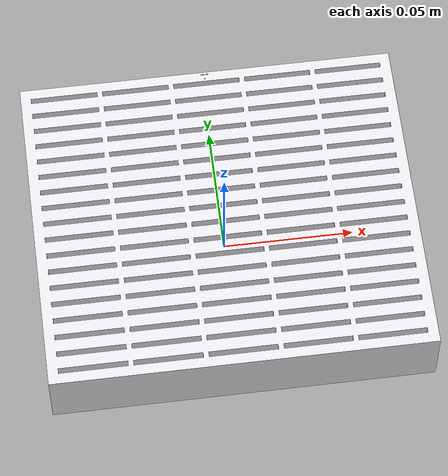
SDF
<?xml version="1.0" ?>
<sdf version="1.7">
  <model name="rack_laminillas">
    <static>true</static>
    <link name="link">

      <collision name="col_base">
        <pose>0.00000 0.00000 0.00100 0 0 0</pose>
        <geometry>
          <box><size>0.14450 0.12560 0.00200</size></box>
        </geometry>
        <surface>
          <friction><ode><mu>0.9</mu><mu2>0.9</mu2></ode></friction>
          <contact>
            <ode><kp>1e6</kp><kd>100</kd><min_depth>0.0002</min_depth></ode>
          </contact>
        </surface>
      </collision>

      <collision name="col_nervio_y_00">
        <pose>0.00000 -0.06080 0.01450 0 0 0</pose>
        <geometry>
          <box><size>0.14450 0.00400 0.02500</size></box>
        </geometry>
        <surface>
          <friction><ode><mu>0.9</mu><mu2>0.9</mu2></ode></friction>
          <contact>
            <ode><kp>1e6</kp><kd>100</kd><min_depth>0.0002</min_depth></ode>
          </contact>
        </surface>
      </collision>

      <collision name="col_nervio_y_01">
        <pose>0.00000 -0.05440 0.01450 0 0 0</pose>
        <geometry>
          <box><size>0.14450 0.00480 0.02500</size></box>
        </geometry>
        <surface>
          <friction><ode><mu>0.9</mu><mu2>0.9</mu2></ode></friction>
          <contact>
            <ode><kp>1e6</kp><kd>100</kd><min_depth>0.0002</min_depth></ode>
          </contact>
        </surface>
      </collision>

      <collision name="col_nervio_y_02">
        <pose>0.00000 -0.04760 0.01450 0 0 0</pose>
        <geometry>
          <box><size>0.14450 0.00480 0.02500</size></box>
        </geometry>
        <surface>
          <friction><ode><mu>0.9</mu><mu2>0.9</mu2></ode></friction>
          <contact>
            <ode><kp>1e6</kp><kd>100</kd><min_depth>0.0002</min_depth></ode>
          </contact>
        </surface>
      </collision>

      <collision name="col_nervio_y_03">
        <pose>0.00000 -0.04080 0.01450 0 0 0</pose>
        <geometry>
          <box><size>0.14450 0.00480 0.02500</size></box>
        </geometry>
        <surface>
          <friction><ode><mu>0.9</mu><mu2>0.9</mu2></ode></friction>
          <contact>
            <ode><kp>1e6</kp><kd>100</kd><min_depth>0.0002</min_depth></ode>
          </contact>
        </surface>
      </collision>

      <collision name="col_nervio_y_04">
        <pose>0.00000 -0.03400 0.01450 0 0 0</pose>
        <geometry>
          <box><size>0.14450 0.00480 0.02500</size></box>
        </geometry>
        <surface>
          <friction><ode><mu>0.9</mu><mu2>0.9</mu2></ode></friction>
          <contact>
            <ode><kp>1e6</kp><kd>100</kd><min_depth>0.0002</min_depth></ode>
          </contact>
        </surface>
      </collision>

      <collision name="col_nervio_y_05">
        <pose>0.00000 -0.02720 0.01450 0 0 0</pose>
        <geometry>
          <box><size>0.14450 0.00480 0.02500</size></box>
        </geometry>
        <surface>
          <friction><ode><mu>0.9</mu><mu2>0.9</mu2></ode></friction>
          <contact>
            <ode><kp>1e6</kp><kd>100</kd><min_depth>0.0002</min_depth></ode>
          </contact>
        </surface>
      </collision>

      <collision name="col_nervio_y_06">
        <pose>0.00000 -0.02040 0.01450 0 0 0</pose>
        <geometry>
          <box><size>0.14450 0.00480 0.02500</size></box>
        </geometry>
        <surface>
          <friction><ode><mu>0.9</mu><mu2>0.9</mu2></ode></friction>
          <contact>
            <ode><kp>1e6</kp><kd>100</kd><min_depth>0.0002</min_depth></ode>
          </contact>
        </surface>
      </collision>

      <collision name="col_nervio_y_07">
        <pose>0.00000 -0.01360 0.01450 0 0 0</pose>
        <geometry>
          <box><size>0.14450 0.00480 0.02500</size></box>
        </geometry>
        <surface>
          <friction><ode><mu>0.9</mu><mu2>0.9</mu2></ode></friction>
          <contact>
            <ode><kp>1e6</kp><kd>100</kd><min_depth>0.0002</min_depth></ode>
          </contact>
        </surface>
      </collision>

      <collision name="col_nervio_y_08">
        <pose>0.00000 -0.00680 0.01450 0 0 0</pose>
        <geometry>
          <box><size>0.14450 0.00480 0.02500</size></box>
        </geometry>
        <surface>
          <friction><ode><mu>0.9</mu><mu2>0.9</mu2></ode></friction>
          <contact>
            <ode><kp>1e6</kp><kd>100</kd><min_depth>0.0002</min_depth></ode>
          </contact>
        </surface>
      </collision>

      <collision name="col_nervio_y_09">
        <pose>0.00000 0.00000 0.01450 0 0 0</pose>
        <geometry>
          <box><size>0.14450 0.00480 0.02500</size></box>
        </geometry>
        <surface>
          <friction><ode><mu>0.9</mu><mu2>0.9</mu2></ode></friction>
          <contact>
            <ode><kp>1e6</kp><kd>100</kd><min_depth>0.0002</min_depth></ode>
          </contact>
        </surface>
      </collision>

      <collision name="col_nervio_y_10">
        <pose>0.00000 0.00680 0.01450 0 0 0</pose>
        <geometry>
          <box><size>0.14450 0.00480 0.02500</size></box>
        </geometry>
        <surface>
          <friction><ode><mu>0.9</mu><mu2>0.9</mu2></ode></friction>
          <contact>
            <ode><kp>1e6</kp><kd>100</kd><min_depth>0.0002</min_depth></ode>
          </contact>
        </surface>
      </collision>

      <collision name="col_nervio_y_11">
        <pose>0.00000 0.01360 0.01450 0 0 0</pose>
        <geometry>
          <box><size>0.14450 0.00480 0.02500</size></box>
        </geometry>
        <surface>
          <friction><ode><mu>0.9</mu><mu2>0.9</mu2></ode></friction>
          <contact>
            <ode><kp>1e6</kp><kd>100</kd><min_depth>0.0002</min_depth></ode>
          </contact>
        </surface>
      </collision>

      <collision name="col_nervio_y_12">
        <pose>0.00000 0.02040 0.01450 0 0 0</pose>
        <geometry>
          <box><size>0.14450 0.00480 0.02500</size></box>
        </geometry>
        <surface>
          <friction><ode><mu>0.9</mu><mu2>0.9</mu2></ode></friction>
          <contact>
            <ode><kp>1e6</kp><kd>100</kd><min_depth>0.0002</min_depth></ode>
          </contact>
        </surface>
      </collision>

      <collision name="col_nervio_y_13">
        <pose>0.00000 0.02720 0.01450 0 0 0</pose>
        <geometry>
          <box><size>0.14450 0.00480 0.02500</size></box>
        </geometry>
        <surface>
          <friction><ode><mu>0.9</mu><mu2>0.9</mu2></ode></friction>
          <contact>
            <ode><kp>1e6</kp><kd>100</kd><min_depth>0.0002</min_depth></ode>
          </contact>
        </surface>
      </collision>

      <collision name="col_nervio_y_14">
        <pose>0.00000 0.03400 0.01450 0 0 0</pose>
        <geometry>
          <box><size>0.14450 0.00480 0.02500</size></box>
        </geometry>
        <surface>
          <friction><ode><mu>0.9</mu><mu2>0.9</mu2></ode></friction>
          <contact>
            <ode><kp>1e6</kp><kd>100</kd><min_depth>0.0002</min_depth></ode>
          </contact>
        </surface>
      </collision>

      <collision name="col_nervio_y_15">
        <pose>0.00000 0.04080 0.01450 0 0 0</pose>
        <geometry>
          <box><size>0.14450 0.00480 0.02500</size></box>
        </geometry>
        <surface>
          <friction><ode><mu>0.9</mu><mu2>0.9</mu2></ode></friction>
          <contact>
            <ode><kp>1e6</kp><kd>100</kd><min_depth>0.0002</min_depth></ode>
          </contact>
        </surface>
      </collision>

      <collision name="col_nervio_y_16">
        <pose>0.00000 0.04760 0.01450 0 0 0</pose>
        <geometry>
          <box><size>0.14450 0.00480 0.02500</size></box>
        </geometry>
        <surface>
          <friction><ode><mu>0.9</mu><mu2>0.9</mu2></ode></friction>
          <contact>
            <ode><kp>1e6</kp><kd>100</kd><min_depth>0.0002</min_depth></ode>
          </contact>
        </surface>
      </collision>

      <collision name="col_nervio_y_17">
        <pose>0.00000 0.05440 0.01450 0 0 0</pose>
        <geometry>
          <box><size>0.14450 0.00480 0.02500</size></box>
        </geometry>
        <surface>
          <friction><ode><mu>0.9</mu><mu2>0.9</mu2></ode></friction>
          <contact>
            <ode><kp>1e6</kp><kd>100</kd><min_depth>0.0002</min_depth></ode>
          </contact>
        </surface>
      </collision>

      <collision name="col_nervio_y_18">
        <pose>0.00000 0.06080 0.01450 0 0 0</pose>
        <geometry>
          <box><size>0.14450 0.00400 0.02500</size></box>
        </geometry>
        <surface>
          <friction><ode><mu>0.9</mu><mu2>0.9</mu2></ode></friction>
          <contact>
            <ode><kp>1e6</kp><kd>100</kd><min_depth>0.0002</min_depth></ode>
          </contact>
        </surface>
      </collision>

      <collision name="col_tabique_x_00">
        <pose>-0.07025 0.00000 0.01450 0 0 0</pose>
        <geometry>
          <box><size>0.00400 0.12560 0.02500</size></box>
        </geometry>
        <surface>
          <friction><ode><mu>0.9</mu><mu2>0.9</mu2></ode></friction>
          <contact>
            <ode><kp>1e6</kp><kd>100</kd><min_depth>0.0002</min_depth></ode>
          </contact>
        </surface>
      </collision>

      <collision name="col_tabique_x_01">
        <pose>-0.04155 0.00000 0.01450 0 0 0</pose>
        <geometry>
          <box><size>0.00200 0.12560 0.02500</size></box>
        </geometry>
        <surface>
          <friction><ode><mu>0.9</mu><mu2>0.9</mu2></ode></friction>
          <contact>
            <ode><kp>1e6</kp><kd>100</kd><min_depth>0.0002</min_depth></ode>
          </contact>
        </surface>
      </collision>

      <collision name="col_tabique_x_02">
        <pose>-0.01385 0.00000 0.01450 0 0 0</pose>
        <geometry>
          <box><size>0.00200 0.12560 0.02500</size></box>
        </geometry>
        <surface>
          <friction><ode><mu>0.9</mu><mu2>0.9</mu2></ode></friction>
          <contact>
            <ode><kp>1e6</kp><kd>100</kd><min_depth>0.0002</min_depth></ode>
          </contact>
        </surface>
      </collision>

      <collision name="col_tabique_x_03">
        <pose>0.01385 0.00000 0.01450 0 0 0</pose>
        <geometry>
          <box><size>0.00200 0.12560 0.02500</size></box>
        </geometry>
        <surface>
          <friction><ode><mu>0.9</mu><mu2>0.9</mu2></ode></friction>
          <contact>
            <ode><kp>1e6</kp><kd>100</kd><min_depth>0.0002</min_depth></ode>
          </contact>
        </surface>
      </collision>

      <collision name="col_tabique_x_04">
        <pose>0.04155 0.00000 0.01450 0 0 0</pose>
        <geometry>
          <box><size>0.00200 0.12560 0.02500</size></box>
        </geometry>
        <surface>
          <friction><ode><mu>0.9</mu><mu2>0.9</mu2></ode></friction>
          <contact>
            <ode><kp>1e6</kp><kd>100</kd><min_depth>0.0002</min_depth></ode>
          </contact>
        </surface>
      </collision>

      <collision name="col_tabique_x_05">
        <pose>0.07025 0.00000 0.01450 0 0 0</pose>
        <geometry>
          <box><size>0.00400 0.12560 0.02500</size></box>
        </geometry>
        <surface>
          <friction><ode><mu>0.9</mu><mu2>0.9</mu2></ode></friction>
          <contact>
            <ode><kp>1e6</kp><kd>100</kd><min_depth>0.0002</min_depth></ode>
          </contact>
        </surface>
      </collision>

      <visual name="rack">
        <geometry>
          <mesh>
            <uri>model://rack_laminillas/meshes/rack_laminillas.stl</uri>
            <scale>0.001 0.001 0.001</scale>
          </mesh>
        </geometry>
        <material>
          <ambient>0.78 0.78 0.80 1</ambient>
          <diffuse>0.90 0.90 0.92 1</diffuse>
          <specular>0.2 0.2 0.2 1</specular>
        </material>
      </visual>

    </link>
  </model>
</sdf>
